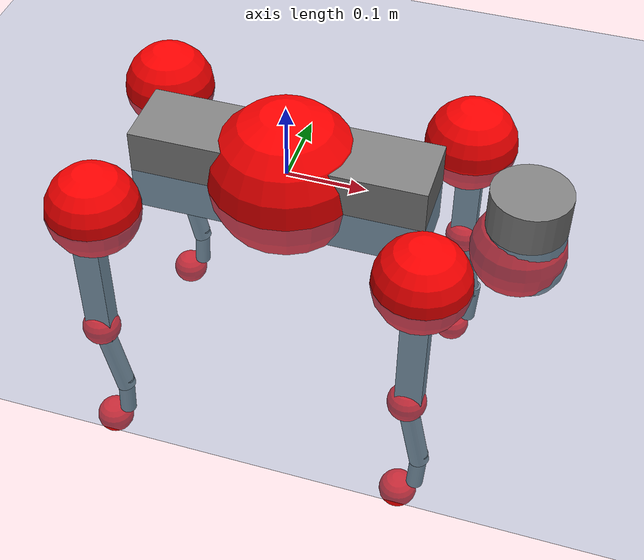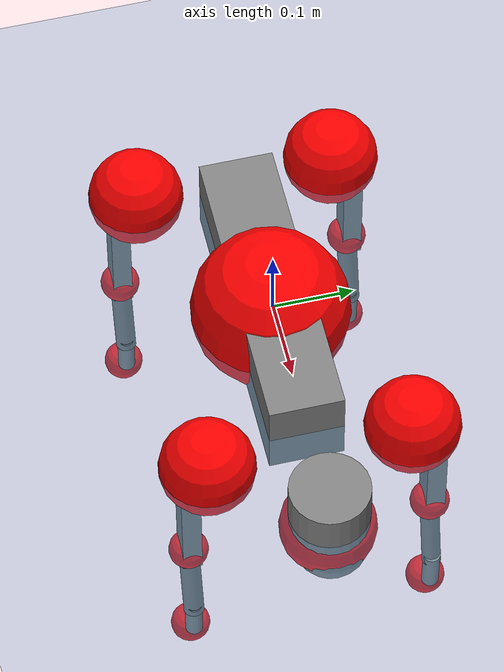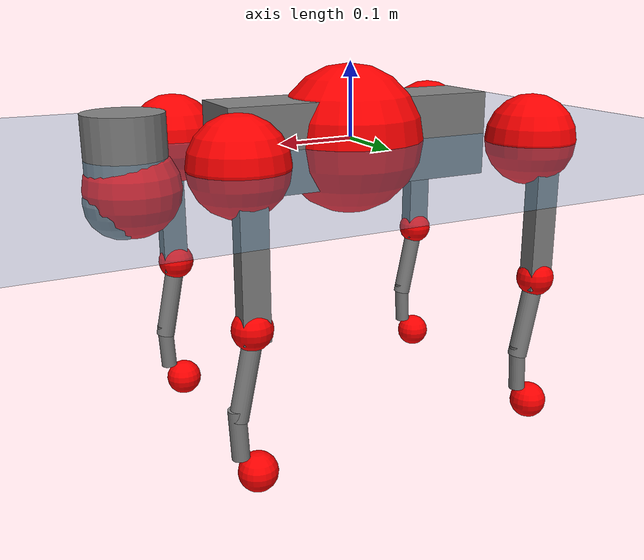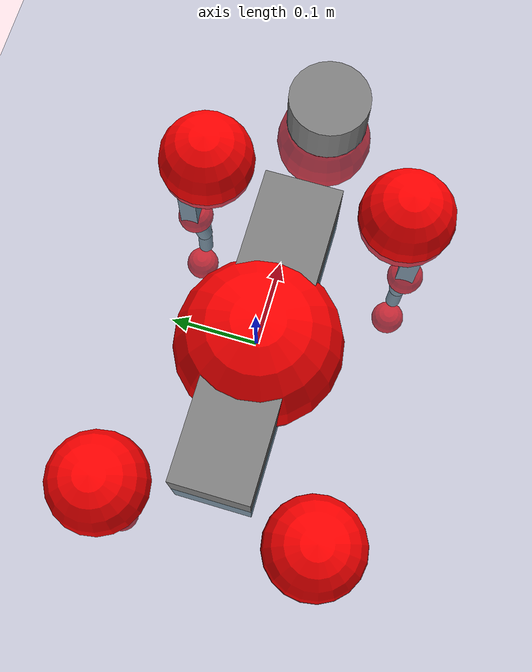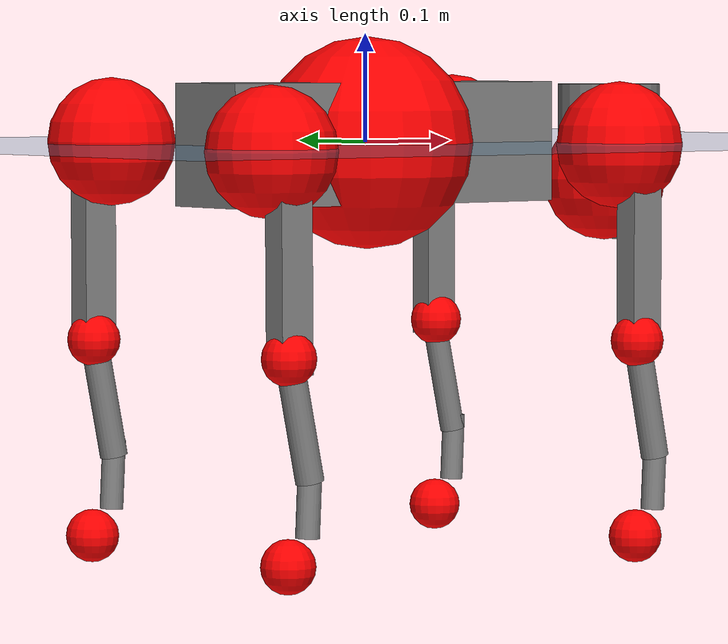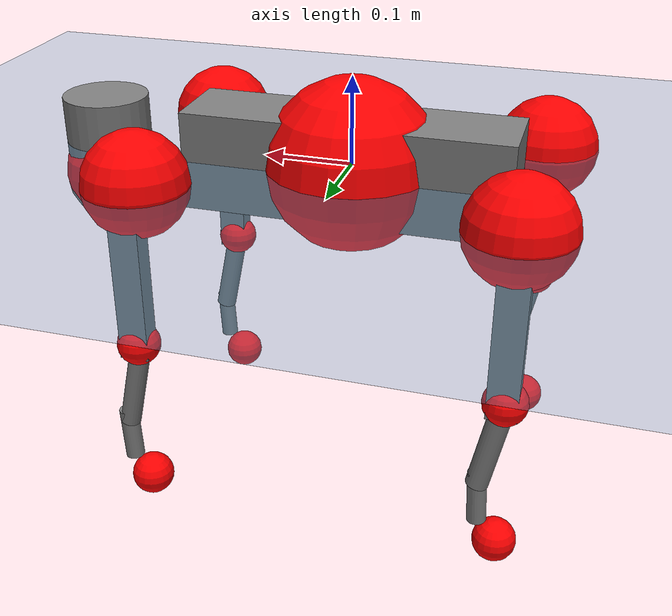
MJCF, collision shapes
<mujoco model="go2">
  <compiler angle="radian" assetdir="assets" balanceinertia="true" inertiafromgeom="false"/>

  <option timestep="0.005" density="1.2" viscosity="2e-05"/>

  <size nkey="1"/>

  <visual>
    <quality shadowsize="8192"/>
    <map shadowclip="0.5"/>
  </visual>

  <default>
    <default class="/">
      <geom contype="0" conaffinity="0" group="1" solref="-1000 -80"/>
      <site size="0.01 0.005 0.005" group="5"/>
      <general forcelimited="true" biastype="affine" gainprm="20" biasprm="0 -20 -0.5"/>
      <default class="go2">
        <joint armature="0.01" damping="0.01" frictionloss="0.2"/>
        <geom condim="1" margin="0.001"/>
        <default class="visual">
          <geom type="mesh" group="2"/>
        </default>
        <default class="collision">
          <geom group="3"/>
          <default class="foot">
            <geom size="0.022 0 0" condim="6" priority="1" friction="0.8 0.02 0.01" solimp="0.015 1 0.022"/>
          </default>
        </default>
        <default class="reward_collision_sphere">
          <geom group="5" rgba="1 0 0 1"/>
        </default>
      </default>
    </default>
  </default>

  <asset>
    <texture type="skybox" colorspace="auto" name="//unnamed_texture_0" builtin="gradient" rgb1="0.95 0.95 0.95" rgb2="0.95 0.95 0.95" width="100" height="600"/>
    <texture type="2d" colorspace="auto" name="texplane" builtin="checker" rgb1="0.345 0.575 0.748" rgb2="0.345 0.575 0.748" markrgb="1 1 1" width="512" height="512"/>
    <material name="MatPlane" class="/" texture="texplane" texuniform="true" texrepeat="2 2" specular="0.9"/>
    <material name="metal" class="/" rgba="0.9 0.95 0.95 1"/>
    <material name="black" class="/" rgba="0 0 0 1"/>
    <material name="white" class="/"/>
    <material name="gray" class="/" rgba="0.671705 0.692426 0.77427 1"/>
    <mesh name="base_0" class="/" file="base_0.obj"/>
    <mesh name="base_1" class="/" file="base_1.obj"/>
    <mesh name="base_2" class="/" file="base_2.obj"/>
    <mesh name="base_3" class="/" file="base_3.obj"/>
    <mesh name="base_4" class="/" file="base_4.obj"/>
    <mesh name="hip_0" class="/" file="hip_0.obj"/>
    <mesh name="hip_1" class="/" file="hip_1.obj"/>
    <mesh name="thigh_0" class="/" file="thigh_0.obj"/>
    <mesh name="thigh_1" class="/" file="thigh_1.obj"/>
    <mesh name="thigh_mirror_0" class="/" file="thigh_mirror_0.obj"/>
    <mesh name="thigh_mirror_1" class="/" file="thigh_mirror_1.obj"/>
    <mesh name="calf_0" class="/" file="calf_0.obj"/>
    <mesh name="calf_1" class="/" file="calf_1.obj"/>
    <mesh name="calf_mirror_0" class="/" file="calf_mirror_0.obj"/>
    <mesh name="calf_mirror_1" class="/" file="calf_mirror_1.obj"/>
    <mesh name="foot" class="/" file="foot.obj"/>
  </asset>

  <worldbody>
    <geom name="floor" class="/" size="100 100 0.125" type="plane" group="0" material="MatPlane"/>
    <light name="toplight_shadow" class="/" pos="0 0 5" dir="0.0990148 0.0990148 -0.990148" type="directional" ambient="0.04 0.04 0.04" diffuse="0.55 0.55 0.55" specular="0.12 0.12 0.12"/>
    <light name="toplight_fill" class="/" pos="0 0 5" dir="0.0990148 0.0990148 -0.990148" type="directional" castshadow="false" ambient="0.04 0.04 0.04" diffuse="0.3 0.3 0.3" specular="0.08 0.08 0.08"/>
    <body name="trunk" childclass="go2" pos="0.00017831 -0.00275763 -0.000563436" quat="1 3.18712e-05 -3.99035e-05 -8.76746e-06">
      <inertial pos="0.0218712 -0.00294671 -0.00451607" quat="-0.000469457 0.708561 0.00541993 0.705628" mass="6.3907" diaginertia="0.124368 0.122792 0.0109442"/>
      <joint name="//unnamed_joint_0" type="free" armature="0" damping="0" frictionloss="0"/>
      <geom name="//unnamed_geom_1" class="visual" material="black" mesh="base_0"/>
      <geom name="//unnamed_geom_2" class="visual" material="black" mesh="base_1"/>
      <geom name="//unnamed_geom_3" class="visual" material="black" mesh="base_2"/>
      <geom name="//unnamed_geom_4" class="visual" material="white" mesh="base_3"/>
      <geom name="//unnamed_geom_5" class="visual" material="gray" mesh="base_4"/>
      <geom name="trunk_1" class="collision" size="0.184267 0.0457974 0.0558385" type="box"/>
      <geom name="trunk_2" class="collision" size="0.0489812 0.0440831" pos="0.295171 0 0.00852351" type="cylinder"/>
      <geom name="trunk_3" class="collision" size="0.0460423" pos="0.303457 0 -0.0511411"/>
      <geom name="//unnamed_geom_9" class="reward_collision_sphere" size="0.0979624"/>
      <geom name="//unnamed_geom_10" class="reward_collision_sphere" size="0.0587774" pos="0.289993 0 -0.0383558"/>
      <site name="imu" pos="-0.0129187 0.00971228 0.0222924" size="0.00979624"/>
      <camera name="track" pos="0 -2.10166 0" quat="0.707107 0.707107 0 0" mode="trackcom"/>
      <camera name="ego_camera" pos="0.323135 0 0.0383558" quat="-0.5 -0.5 0.5 0.5"/>
      <body name="FL_hip" pos="0.202228 0.0509508 0.00244727" quat="0.999999 0.00116992 -0.000278253 -0.000322316">
        <inertial pos="-0.00451693 0.00234241 0.00162221" quat="0.496438 0.497241 0.504906 0.501369" mass="0.611421" diaginertia="0.00105193 0.000727683 0.000215796"/>
        <joint name="FL_hip_joint" pos="0 0 0" axis="0.999991 0.00206283 0.00361238" stiffness="0.013975" range="-1.00903 1.08112" armature="0.0096393" damping="0" frictionloss="0.220192"/>
        <geom name="//unnamed_geom_11" class="visual" material="metal" mesh="hip_0"/>
        <geom name="//unnamed_geom_12" class="visual" material="gray" mesh="hip_1"/>
        <geom name="//unnamed_geom_13" class="collision" size="0.0450627 0.0195925" pos="0 0.0840665 0" quat="0.707107 0.707107 0 0" type="cylinder"/>
        <geom name="//unnamed_geom_14" class="reward_collision_sphere" size="0.0587774" pos="0 0.0735582 0"/>
        <body name="FL_thigh" pos="-0.000112829 0.10237 0.000842522" quat="0.999999 1.33847e-05 -0.00146146 -0.0001352">
          <inertial pos="-0.00132614 -0.0212088 -0.02891" quat="0.829848 0.0729063 -0.0272792 0.552534" mass="1.08182" diaginertia="0.00704408 0.00750482 0.000397193"/>
          <joint name="FL_thigh_joint" pos="0 0 0" axis="0.0146306 0.999822 0.0118751" stiffness="0.00597724" range="-1.53934 3.54246" armature="0.0111735" damping="0" frictionloss="0.19983"/>
          <geom name="//unnamed_geom_15" class="visual" material="metal" mesh="thigh_0"/>
          <geom name="//unnamed_geom_16" class="visual" material="gray" mesh="thigh_1"/>
          <geom name="//unnamed_geom_17" class="collision" size="0.10433 0.0120004 0.0166536" pos="0 0 -0.0907754" quat="0.707107 0 0.707107 0" type="box"/>
          <body name="FL_calf" pos="0.000403273 -0.00289072 -0.182301" quat="1 -0.00086658 0.000108844 0.000261048">
            <inertial pos="0.00896859 -0.000653354 -0.122388" quat="0.710816 0.000696919 -0.00382039 0.703367" mass="0.229266" diaginertia="0.00171293 0.00193212 2.31474e-05"/>
            <joint name="FL_calf_joint" pos="0 0 0" axis="-0.00372803 0.999981 -0.00494153" range="-2.76897 -0.8334" armature="0.00866568" damping="0.00310982" frictionloss="0.196789"/>
            <geom name="//unnamed_geom_18" class="visual" material="gray" mesh="calf_0"/>
            <geom name="//unnamed_geom_19" class="visual" material="black" mesh="calf_1"/>
            <geom name="FL_calf0" class="collision" size="0.0117555 0.0587774" pos="0.00828551 0 -0.0511411" quat="0.994493 0 -0.104807 0" type="cylinder"/>
            <geom name="//unnamed_geom_21" class="collision" size="0.0107759 0.0318378" pos="0.0207138 0 -0.126148" quat="0.999688 0 0.0249974 0" type="cylinder"/>
            <geom name="//unnamed_geom_22" class="visual" pos="0 0 -0.181551" quat="1 0 0 0" material="black" mesh="foot"/>
            <geom name="FL_foot" class="foot" size="0.0159989" pos="-0.00207138 0 -0.181551"/>
            <geom name="//unnamed_geom_24" class="reward_collision_sphere" size="0.0244906"/>
            <geom name="//unnamed_geom_25" class="reward_collision_sphere" size="0.0244906" pos="-0.00207138 0 -0.181551"/>
            <site name="FL_foot" class="foot" pos="-0.00207138 0 -0.181551" size="0.00979624"/>
          </body>
        </body>
      </body>
      <body name="FR_hip" pos="0.199846 -0.0510213 -0.00240728" quat="1 0.000139902 4.02126e-05 0.000169261">
        <inertial pos="-0.00534595 -0.00303966 -0.000671726" quat="0.498171 0.505362 0.499249 0.497177" mass="0.61166" diaginertia="0.00104968 0.000740109 0.000222126"/>
        <joint name="FR_hip_joint" pos="0 0 0" axis="0.999932 0.00305685 0.0112288" range="-1.04843 1.05064" armature="0.00963984" damping="0.0116323" frictionloss="0.198408"/>
        <geom name="//unnamed_geom_26" class="visual" pos="0 1.72907e-09 7.41634e-08" quat="4.63268e-05 1 0 0" material="metal" mesh="hip_0"/>
        <geom name="//unnamed_geom_27" class="visual" pos="0 2.80303e-09 -1.83435e-07" quat="4.63268e-05 1 0 0" material="gray" mesh="hip_1"/>
        <geom name="//unnamed_geom_28" class="collision" size="0.0450627 0.0195925" pos="0 -0.0840665 0" quat="0.707107 0.707107 0 0" type="cylinder"/>
        <geom name="//unnamed_geom_29" class="reward_collision_sphere" size="0.0587774" pos="0 -0.0735582 0"/>
        <body name="FR_thigh" pos="0.00264085 -0.0985008 0.00256204" quat="1 0.000483012 -0.000528697 -0.000257618">
          <inertial pos="-0.00373466 0.0212184 -0.0277382" quat="0.555215 -0.0102424 0.085031 0.827286" mass="1.15744" diaginertia="0.00730101 0.00774797 0.00040638"/>
          <joint name="FR_thigh_joint" pos="0 0 0" axis="0.00346108 -0.999994 0.000892659" range="-3.53997 1.57193" armature="0.00942265" damping="0.0117108" frictionloss="0.197226"/>
          <geom name="//unnamed_geom_30" class="visual" material="metal" mesh="thigh_mirror_0"/>
          <geom name="//unnamed_geom_31" class="visual" material="gray" mesh="thigh_mirror_1"/>
          <geom name="//unnamed_geom_32" class="collision" size="0.10433 0.0120004 0.0166536" pos="0 0 -0.0907754" quat="0.707107 0 0.707107 0" type="box"/>
          <body name="FR_calf" pos="-0.00285857 -0.0010025 -0.183363" quat="0.999999 -0.000982013 -0.00032379 -0.000930137">
            <inertial pos="0.00736608 0.000839998 -0.118423" quat="0.705401 -0.0151101 0.00274351 0.708642" mass="0.224996" diaginertia="0.001753 0.00186418 2.38341e-05"/>
            <joint name="FR_calf_joint" pos="0 0 0" axis="-0.0112563 -0.999935 0.00182421" range="0.81527 2.72702" armature="0.0109939" damping="0.0223654" frictionloss="0.168648"/>
            <geom name="//unnamed_geom_33" class="visual" material="gray" mesh="calf_mirror_0"/>
            <geom name="//unnamed_geom_34" class="visual" material="black" mesh="calf_mirror_1"/>
            <geom name="FR_calf0" class="collision" size="0.0127351 0.0587774" pos="0.0103569 0 -0.0511411" quat="0.995004 0 -0.0998334 0" type="cylinder"/>
            <geom name="//unnamed_geom_36" class="collision" size="0.0107759 0.0318378" pos="0.0207138 0 -0.126148" quat="0.999688 0 0.0249974 0" type="cylinder"/>
            <geom name="//unnamed_geom_37" class="visual" pos="0 0 -0.181551" quat="1 0 0 0" material="black" mesh="foot"/>
            <geom name="FR_foot" class="foot" size="0.0203831" pos="-0.00207138 0 -0.181551"/>
            <geom name="//unnamed_geom_39" class="reward_collision_sphere" size="0.0244906"/>
            <geom name="//unnamed_geom_40" class="reward_collision_sphere" size="0.0244906" pos="-0.00207138 0 -0.181551"/>
            <site name="FR_foot" class="foot" pos="-0.00207138 0 -0.181551" size="0.00979624"/>
          </body>
        </body>
      </body>
      <body name="RL_hip" pos="-0.200648 0.0501583 0.00176341" quat="1 0.000276939 -0.000179318 -2.94179e-05">
        <inertial pos="0.00526774 -0.000505221 0.00199278" quat="0.506164 0.49845 0.495584 0.499742" mass="0.641759" diaginertia="0.00106042 0.000771745 0.000218205"/>
        <joint name="RL_hip_joint" pos="0 0 0" axis="-0.999805 -0.0190621 0.00506474" range="-1.06275 1.02436" armature="0.00981971" damping="0.0129077" frictionloss="0.185999"/>
        <geom name="//unnamed_geom_41" class="visual" pos="-1.59715e-09 0 -3.13079e-07" quat="4.63268e-05 0 1 0" material="metal" mesh="hip_0"/>
        <geom name="//unnamed_geom_42" class="visual" pos="-2.58918e-09 0 -2.77656e-07" quat="4.63268e-05 0 1 0" material="gray" mesh="hip_1"/>
        <geom name="//unnamed_geom_43" class="collision" size="0.0450627 0.0195925" pos="0 0.0840665 0" quat="0.707107 0.707107 0 0" type="cylinder"/>
        <geom name="//unnamed_geom_44" class="reward_collision_sphere" size="0.0587774" pos="0 0.0735582 0"/>
        <body name="RL_thigh" pos="-0.00201862 0.100389 -0.00152565" quat="1 -0.000365647 0.000237775 0.000201865">
          <inertial pos="-0.00420446 -0.022494 -0.030566" quat="0.830772 0.0814315 -0.0106749 0.550521" mass="1.11724" diaginertia="0.00717903 0.00760484 0.000400288"/>
          <joint name="RL_thigh_joint" pos="0 0 0" axis="0.00121468 0.999999 0.000647995" stiffness="0.00493623" range="-0.577302 4.58028" armature="0.0095559" damping="0" frictionloss="0.201617"/>
          <geom name="//unnamed_geom_45" class="visual" material="metal" mesh="thigh_0"/>
          <geom name="//unnamed_geom_46" class="visual" material="gray" mesh="thigh_1"/>
          <geom name="//unnamed_geom_47" class="collision" size="0.10433 0.0120004 0.0166536" pos="0 0 -0.0907754" quat="0.707107 0 0.707107 0" type="box"/>
          <body name="RL_calf" pos="-0.00185666 -0.00263998 -0.181725" quat="1 0.000316293 0.000320693 -2.57517e-06">
            <inertial pos="0.00694347 -0.000503044 -0.119423" quat="0.710427 0.0017081 -0.00453079 0.703754" mass="0.239361" diaginertia="0.00188649 0.00192433 2.45375e-05"/>
            <joint name="RL_calf_joint" pos="0 0 0" axis="-0.0134066 0.99991 -0.000433167" stiffness="0.00192492" range="-2.67537 -0.89127" armature="0.0100861" damping="0" frictionloss="0.191261"/>
            <geom name="//unnamed_geom_48" class="visual" material="gray" mesh="calf_0"/>
            <geom name="//unnamed_geom_49" class="visual" material="black" mesh="calf_1"/>
            <geom name="RL_calf0" class="collision" size="0.0127351 0.0587774" pos="0.0103569 0 -0.0511411" quat="0.995004 0 -0.0998334 0" type="cylinder"/>
            <geom name="//unnamed_geom_51" class="collision" size="0.0107759 0.0318378" pos="0.0207138 0 -0.126148" quat="0.999688 0 0.0249974 0" type="cylinder"/>
            <geom name="//unnamed_geom_52" class="visual" pos="0 0 -0.181551" quat="1 0 0 0" material="black" mesh="foot"/>
            <geom name="RL_foot" class="foot" size="0.0194641" pos="-0.00207138 0 -0.181551"/>
            <geom name="//unnamed_geom_54" class="reward_collision_sphere" size="0.0244906"/>
            <geom name="//unnamed_geom_55" class="reward_collision_sphere" size="0.0244906" pos="-0.00207138 0 -0.181551"/>
            <site name="RL_foot" class="foot" pos="-0.00207138 0 -0.181551" size="0.00979624"/>
          </body>
        </body>
      </body>
      <body name="RR_hip" pos="-0.201131 -0.0487603 -0.00331979" quat="0.999999 -0.000954603 -0.000849735 0.000149888">
        <inertial pos="0.00481588 0.000889263 -0.00257142" quat="0.497354 0.497845 0.500769 0.504004" mass="0.655053" diaginertia="0.00111613 0.000786858 0.000228554"/>
        <joint name="RR_hip_joint" pos="0 0 0" axis="-0.999937 -0.00161326 0.0111275" stiffness="0.00288998" range="-1.02671 0.993957" armature="0.00972911" damping="0.00338665" frictionloss="0.188412"/>
        <geom name="//unnamed_geom_56" class="visual" pos="1.59768e-09 1.72907e-09 -3.87242e-07" quat="2.14617e-09 4.63268e-05 4.63268e-05 -1" material="metal" mesh="hip_0"/>
        <geom name="//unnamed_geom_57" class="visual" pos="2.58788e-09 2.80303e-09 -9.42218e-08" quat="2.14617e-09 4.63268e-05 4.63268e-05 -1" material="gray" mesh="hip_1"/>
        <geom name="//unnamed_geom_58" class="collision" size="0.0450627 0.0195925" pos="0 -0.0840665 0" quat="0.707107 0.707107 0 0" type="cylinder"/>
        <geom name="//unnamed_geom_59" class="reward_collision_sphere" size="0.0587774" pos="0 -0.0735582 0"/>
        <body name="RR_thigh" pos="0.000195491 -0.0978762 0.00139029" quat="0.999999 -0.00065582 -0.00125374 -0.000434248">
          <inertial pos="-0.00373077 0.0207948 -0.025766" quat="0.549642 -0.0188968 0.0812483 0.831225" mass="1.05671" diaginertia="0.0068603 0.00732854 0.000385001"/>
          <joint name="RR_thigh_joint" pos="0 0 0" axis="0.00193803 -0.999983 0.00542236" range="-4.55795 0.564088" armature="0.00975094" damping="0.0148777" frictionloss="0.185519"/>
          <geom name="//unnamed_geom_60" class="visual" material="metal" mesh="thigh_mirror_0"/>
          <geom name="//unnamed_geom_61" class="visual" material="gray" mesh="thigh_mirror_1"/>
          <geom name="//unnamed_geom_62" class="collision" size="0.10433 0.0120004 0.0166536" pos="0 0 -0.0907754" quat="0.707107 0 0.707107 0" type="box"/>
          <body name="RR_calf" pos="-0.00113188 -0.000542705 -0.181177" quat="1 0.00010649 0.000636549 0.000218144">
            <inertial pos="0.00824854 0.000689023 -0.119857" quat="0.70431 -0.00572738 0.00354366 0.709861" mass="0.228526" diaginertia="0.00184511 0.00189275 2.3743e-05"/>
            <joint name="RR_calf_joint" pos="0 0 0" axis="-0.00672975 -0.999975 -0.00216224" range="0.779918 2.77815" armature="0.00844477" damping="0.0116355" frictionloss="0.19873"/>
            <geom name="//unnamed_geom_63" class="visual" material="gray" mesh="calf_mirror_0"/>
            <geom name="//unnamed_geom_64" class="visual" material="black" mesh="calf_mirror_1"/>
            <geom name="RR_calf0" class="collision" size="0.0127351 0.0587774" pos="0.0103569 0 -0.0511411" quat="0.995004 0 -0.0998334 0" type="cylinder"/>
            <geom name="//unnamed_geom_66" class="collision" size="0.0107759 0.0318378" pos="0.0207138 0 -0.126148" quat="0.999688 0 0.0249974 0" type="cylinder"/>
            <geom name="//unnamed_geom_67" class="visual" pos="0 0 -0.181551" quat="1 0 0 0" material="black" mesh="foot"/>
            <geom name="RR_foot" class="foot" size="0.0195358" pos="-0.00207138 0 -0.181551"/>
            <geom name="//unnamed_geom_69" class="reward_collision_sphere" size="0.0244906"/>
            <geom name="//unnamed_geom_70" class="reward_collision_sphere" size="0.0244906" pos="-0.00207138 0 -0.181551"/>
            <site name="RR_foot" class="foot" pos="-0.00207138 0 -0.181551" size="0.00979624"/>
          </body>
        </body>
      </body>
    </body>
  </worldbody>

  <contact>
    <pair class="/" geom1="floor" geom2="FL_foot" name="//unnamed_contact_0"/>
    <pair class="/" geom1="floor" geom2="FR_foot" name="//unnamed_contact_1"/>
    <pair class="/" geom1="floor" geom2="RL_foot" name="//unnamed_contact_2"/>
    <pair class="/" geom1="floor" geom2="RR_foot" name="//unnamed_contact_3"/>
  </contact>

  <actuator>
    <general name="FL_hip" class="/" joint="FL_hip_joint" forcerange="-25.0206 25.0206" gainprm="20.932" biasprm="0 -20.932 -0.491725"/>
    <general name="FL_thigh" class="/" joint="FL_thigh_joint" forcerange="-21.1873 21.1873" gainprm="20.932" biasprm="0 -20.932 -0.491725"/>
    <general name="FL_calf" class="/" joint="FL_calf_joint" forcerange="-44.8001 44.8001" gainprm="20.932" biasprm="0 -20.932 -0.491725"/>
    <general name="FR_hip" class="/" joint="FR_hip_joint" forcerange="-25.3965 25.3965" gainprm="20.932" biasprm="0 -20.932 -0.491725"/>
    <general name="FR_thigh" class="/" joint="FR_thigh_joint" forcerange="-25.3867 25.3867" gainprm="20.932" biasprm="0 -20.932 -0.491725"/>
    <general name="FR_calf" class="/" joint="FR_calf_joint" forcerange="-48.3737 48.3737" gainprm="20.932" biasprm="0 -20.932 -0.491725"/>
    <general name="RL_hip" class="/" joint="RL_hip_joint" forcerange="-23.8545 23.8545" gainprm="20.932" biasprm="0 -20.932 -0.491725"/>
    <general name="RL_thigh" class="/" joint="RL_thigh_joint" forcerange="-22.3105 22.3105" gainprm="20.932" biasprm="0 -20.932 -0.491725"/>
    <general name="RL_calf" class="/" joint="RL_calf_joint" forcerange="-41.1958 41.1958" gainprm="20.932" biasprm="0 -20.932 -0.491725"/>
    <general name="RR_hip" class="/" joint="RR_hip_joint" forcerange="-21.1973 21.1973" gainprm="20.932" biasprm="0 -20.932 -0.491725"/>
    <general name="RR_thigh" class="/" joint="RR_thigh_joint" forcerange="-24.0615 24.0615" gainprm="20.932" biasprm="0 -20.932 -0.491725"/>
    <general name="RR_calf" class="/" joint="RR_calf_joint" forcerange="-44.5864 44.5864" gainprm="20.932" biasprm="0 -20.932 -0.491725"/>
  </actuator>

  <sensor>
    <gyro site="imu" name="imu_angular_velocity"/>
    <velocimeter site="imu" name="imu_linear_velocity"/>
    <framelinvel objtype="site" objname="FL_foot" name="FL_foot_global_linear_velocity"/>
    <framelinvel objtype="site" objname="FR_foot" name="FR_foot_global_linear_velocity"/>
    <framelinvel objtype="site" objname="RL_foot" name="RL_foot_global_linear_velocity"/>
    <framelinvel objtype="site" objname="RR_foot" name="RR_foot_global_linear_velocity"/>
  </sensor>

  <keyframe>
    <key name="home" qpos="0 0 0.325 1 0 0 0 0.1 0.8 -1.5 -0.1 -0.8 1.5 -0.1 0.8 -1.5 0.1 -0.8 1.5"/>
  </keyframe>
</mujoco>
